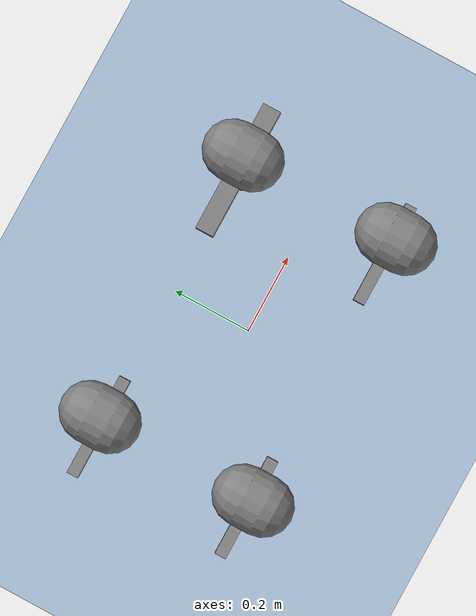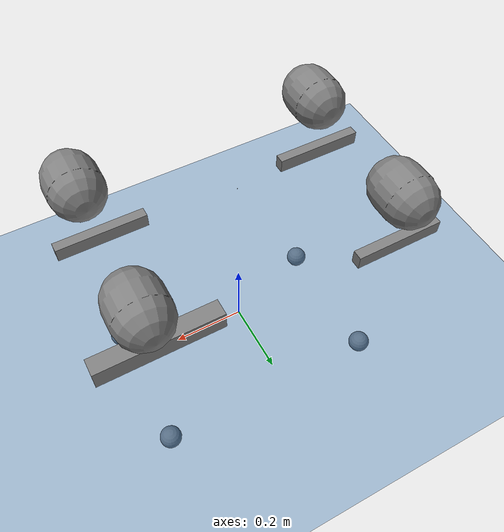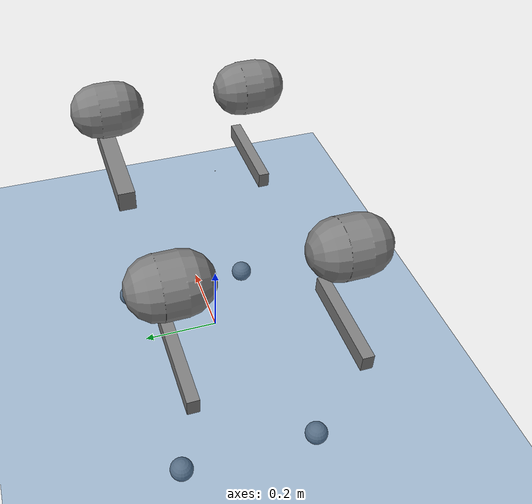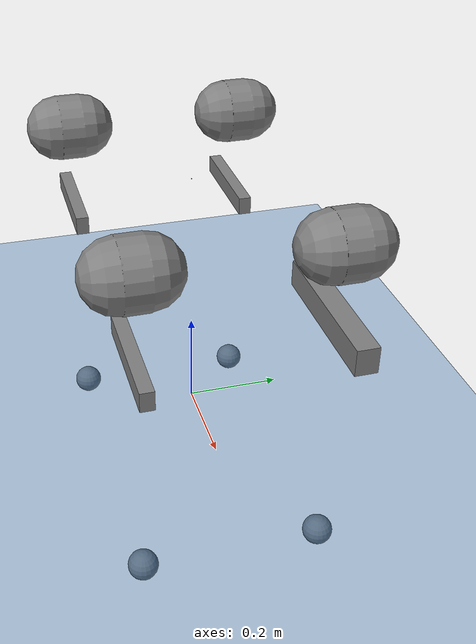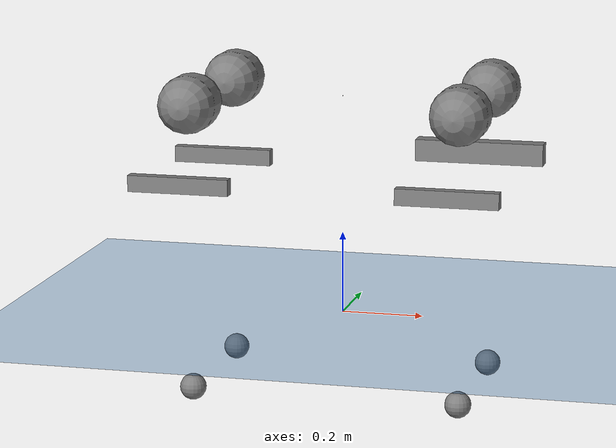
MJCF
<mujoco model="MuJoCo Model">
  <compiler angle="radian"/>

  <option gravity="0 0 -9.81" integrator="implicitfast">
    <flag multiccd="disable"/>
  </option>

  <worldbody>
    <geom name="ground_plane_0" size="5 5 5" type="plane" contype="2" conaffinity="2147483645" friction="2 0.005 0.0001" solref="0.02" rgba="0 0.3 0.6 1"/>
    <body name="body_0" pos="0 0 0.54">
      <inertial pos="0 0 0" quat="-0.00434736 0.708322 -0.0038071 0.705866" mass="41.4371" diaginertia="1.18253 1.06178 0.274649"/>
      <joint name="joint_1" type="free"/>
      <geom name="shape_1_1" size="0.001" contype="4" conaffinity="2147483643" friction="2 0.005 0.0001" solref="0.02"/>
      <body name="body_1" pos="0.3285 0.072 0">
        <inertial pos="0 0 0" quat="0.51159 0.511095 0.488163 0.488625" mass="2.9464" diaginertia="0.00487759 0.0037087 0.00331551"/>
        <joint name="FL_hip" pos="0 0 0" axis="1 0 0" solreflimit="-10000 -100" limited="true" range="-0.87 0.87" actuatorfrclimited="true" actuatorfrcrange="-200 200"/>
        <geom name="shape_2_2" size="0.07 0.025" pos="0 0.12 0" quat="0.707107 -0.707107 0 0" type="capsule" contype="4" conaffinity="2147483643" friction="2 0.005 0.0001" solref="0.02"/>
        <body name="body_2" pos="0 0.11973 0">
          <inertial pos="0 0 0" quat="0.898991 0.0831319 -0.00247095 0.429998" mass="4.8094" diaginertia="0.0629358 0.0622943 0.00666756"/>
          <joint name="FL_thigh" pos="0 0 0" axis="0 1 0" solreflimit="-10000 -100" limited="true" range="-0.94 3.13159" actuatorfrclimited="true" actuatorfrcrange="-200 200"/>
          <geom name="shape_3_3" size="0.16 0.02225 0.027" pos="-0.025 0 -0.16" type="box" contype="4" conaffinity="2147483643" friction="2 0.005 0.0001" solref="0.02"/>
          <body name="FL_foot" pos="0 -8.6984e-05 -0.35">
            <inertial pos="0 0 0" quat="0.706813 -0.0203887 -0.0203887 0.706813" mass="0.53" diaginertia="0.011534 0.0114671 0.000293873"/>
            <joint name="FL_calf" pos="0 0 0" axis="0 1 0" solreflimit="-10000 -100" limited="true" range="-2.82 -0.43" actuatorfrclimited="true" actuatorfrcrange="-320 320"/>
            <geom name="shape_4_4" size="0.032" pos="0 0 -0.35" contype="4" conaffinity="2147483643" friction="2 0.005 0.0001" solref="0.02"/>
          </body>
        </body>
      </body>
      <body name="body_4" pos="0.3285 -0.072 0">
        <inertial pos="0 0 0" quat="0.476259 0.475828 0.519403 0.526294" mass="2.9464" diaginertia="0.00469091 0.0034208 0.00262499"/>
        <joint name="FR_hip" pos="0 0 0" axis="1 0 0" solreflimit="-10000 -100" limited="true" range="-0.87 0.87" actuatorfrclimited="true" actuatorfrcrange="-200 200"/>
        <geom name="shape_5_5" size="0.07 0.025" pos="0 -0.12 0" quat="0.707107 -0.707107 0 0" type="capsule" contype="4" conaffinity="2147483643" friction="2 0.005 0.0001" solref="0.02"/>
        <body name="body_5" pos="0 -0.11973 0">
          <inertial pos="0 0 0" quat="0.430062 -0.0024769 0.083131 0.898961" mass="4.8094" diaginertia="0.062936 0.0622945 0.00666762"/>
          <joint name="FR_thigh" pos="0 0 0" axis="0 1 0" solreflimit="-10000 -100" limited="true" range="-0.94 3.13159" actuatorfrclimited="true" actuatorfrcrange="-200 200"/>
          <geom name="shape_6_6" size="0.125 0.014 0.02" pos="-0.03 0 -0.2" type="box" contype="4" conaffinity="2147483643" friction="2 0.005 0.0001" solref="0.02"/>
          <body name="FR_foot" pos="0 8.6986e-05 -0.35">
            <inertial pos="0 0 0" quat="0.706813 -0.0203887 -0.0203887 0.706813" mass="0.53" diaginertia="0.011534 0.0114671 0.000293873"/>
            <joint name="FR_calf" pos="0 0 0" axis="0 1 0" solreflimit="-10000 -100" limited="true" range="-2.82 -0.43" actuatorfrclimited="true" actuatorfrcrange="-320 320"/>
            <geom name="shape_7_7" size="0.032" pos="0 0 -0.35" contype="4" conaffinity="2147483643" friction="2 0.005 0.0001" solref="0.02"/>
          </body>
        </body>
      </body>
      <body name="body_7" pos="-0.3285 0.072 0">
        <inertial pos="0 0 0" quat="0.475828 0.476259 0.526294 0.519403" mass="2.9464" diaginertia="0.00469091 0.0034208 0.00262499"/>
        <joint name="RL_hip" pos="0 0 0" axis="1 0 0" solreflimit="-10000 -100" limited="true" range="-0.87 0.87" actuatorfrclimited="true" actuatorfrcrange="-200 200"/>
        <geom name="shape_8_8" size="0.07 0.025" pos="0 0.12 0" quat="0.707107 -0.707107 0 0" type="capsule" contype="4" conaffinity="2147483643" friction="2 0.005 0.0001" solref="0.02"/>
        <body name="body_8" pos="0 0.11973 0">
          <inertial pos="0 0 0" quat="0.898961 0.083131 -0.0024769 0.430062" mass="4.8094" diaginertia="0.062936 0.0622945 0.00666762"/>
          <joint name="RL_thigh" pos="0 0 0" axis="0 1 0" solreflimit="-10000 -100" limited="true" range="-0.94 3.13159" actuatorfrclimited="true" actuatorfrcrange="-200 200"/>
          <geom name="shape_9_9" size="0.125 0.014 0.02" pos="-0.03 0 -0.2" type="box" contype="4" conaffinity="2147483643" friction="2 0.005 0.0001" solref="0.02"/>
          <body name="RL_foot" pos="0 -8.6984e-05 -0.35">
            <inertial pos="0 0 0" quat="0.706813 -0.0203887 -0.0203887 0.706813" mass="0.53" diaginertia="0.011534 0.0114671 0.000293873"/>
            <joint name="RL_calf" pos="0 0 0" axis="0 1 0" solreflimit="-10000 -100" limited="true" range="-2.82 -0.43" actuatorfrclimited="true" actuatorfrcrange="-320 320"/>
            <geom name="shape_10_10" size="0.032" pos="0 0 -0.35" contype="4" conaffinity="2147483643" friction="2 0.005 0.0001" solref="0.02"/>
          </body>
        </body>
      </body>
      <body name="body_10" pos="-0.3285 -0.072 0">
        <inertial pos="0 0 0" quat="0.511095 0.51159 0.488625 0.488163" mass="2.9464" diaginertia="0.00487759 0.0037087 0.00331551"/>
        <joint name="RR_hip" pos="0 0 0" axis="1 0 0" solreflimit="-10000 -100" limited="true" range="-0.87 0.87" actuatorfrclimited="true" actuatorfrcrange="-200 200"/>
        <geom name="shape_11_11" size="0.07 0.025" pos="0 -0.12 0" quat="0.707107 -0.707107 0 0" type="capsule" contype="4" conaffinity="2147483643" friction="2 0.005 0.0001" solref="0.02"/>
        <body name="body_11" pos="0 -0.11973 0">
          <inertial pos="0 0 0" quat="0.429998 -0.00247095 0.0831319 0.898991" mass="4.8094" diaginertia="0.0629358 0.0622943 0.00666756"/>
          <joint name="RR_thigh" pos="0 0 0" axis="0 1 0" solreflimit="-10000 -100" limited="true" range="-0.94 3.13159" actuatorfrclimited="true" actuatorfrcrange="-200 200"/>
          <geom name="shape_12_12" size="0.125 0.014 0.02" pos="-0.03 0 -0.2" type="box" contype="4" conaffinity="2147483643" friction="2 0.005 0.0001" solref="0.02"/>
          <body name="RR_foot" pos="0 8.6986e-05 -0.35">
            <inertial pos="0 0 0" quat="0.706813 -0.0203887 -0.0203887 0.706813" mass="0.53" diaginertia="0.011534 0.0114671 0.000293873"/>
            <joint name="RR_calf" pos="0 0 0" axis="0 1 0" solreflimit="-10000 -100" limited="true" range="-2.82 -0.43" actuatorfrclimited="true" actuatorfrcrange="-320 320"/>
            <geom name="shape_13_13" size="0.032" pos="0 0 -0.35" contype="4" conaffinity="2147483643" friction="2 0.005 0.0001" solref="0.02"/>
          </body>
        </body>
      </body>
    </body>
  </worldbody>

  <contact>
    <exclude body1="body_0" body2="body_1"/>
    <exclude body1="body_0" body2="body_2"/>
    <exclude body1="body_0" body2="FL_foot"/>
    <exclude body1="body_0" body2="body_4"/>
    <exclude body1="body_0" body2="body_5"/>
    <exclude body1="body_0" body2="FR_foot"/>
    <exclude body1="body_0" body2="body_7"/>
    <exclude body1="body_0" body2="body_8"/>
    <exclude body1="body_0" body2="RL_foot"/>
    <exclude body1="body_0" body2="body_10"/>
    <exclude body1="body_0" body2="body_11"/>
    <exclude body1="body_0" body2="RR_foot"/>
    <exclude body1="body_1" body2="body_2"/>
    <exclude body1="body_1" body2="FL_foot"/>
    <exclude body1="body_1" body2="body_4"/>
    <exclude body1="body_1" body2="body_5"/>
    <exclude body1="body_1" body2="FR_foot"/>
    <exclude body1="body_1" body2="body_7"/>
    <exclude body1="body_1" body2="body_8"/>
    <exclude body1="body_1" body2="RL_foot"/>
    <exclude body1="body_1" body2="body_10"/>
    <exclude body1="body_1" body2="body_11"/>
    <exclude body1="body_1" body2="RR_foot"/>
    <exclude body1="body_2" body2="FL_foot"/>
    <exclude body1="body_2" body2="body_4"/>
    <exclude body1="body_2" body2="body_5"/>
    <exclude body1="body_2" body2="FR_foot"/>
    <exclude body1="body_2" body2="body_7"/>
    <exclude body1="body_2" body2="body_8"/>
    <exclude body1="body_2" body2="RL_foot"/>
    <exclude body1="body_2" body2="body_10"/>
    <exclude body1="body_2" body2="body_11"/>
    <exclude body1="body_2" body2="RR_foot"/>
    <exclude body1="FL_foot" body2="body_4"/>
    <exclude body1="FL_foot" body2="body_5"/>
    <exclude body1="FL_foot" body2="FR_foot"/>
    <exclude body1="FL_foot" body2="body_7"/>
    <exclude body1="FL_foot" body2="body_8"/>
    <exclude body1="FL_foot" body2="RL_foot"/>
    <exclude body1="FL_foot" body2="body_10"/>
    <exclude body1="FL_foot" body2="body_11"/>
    <exclude body1="FL_foot" body2="RR_foot"/>
    <exclude body1="body_4" body2="body_5"/>
    <exclude body1="body_4" body2="FR_foot"/>
    <exclude body1="body_4" body2="body_7"/>
    <exclude body1="body_4" body2="body_8"/>
    <exclude body1="body_4" body2="RL_foot"/>
    <exclude body1="body_4" body2="body_10"/>
    <exclude body1="body_4" body2="body_11"/>
    <exclude body1="body_4" body2="RR_foot"/>
    <exclude body1="body_5" body2="FR_foot"/>
    <exclude body1="body_5" body2="body_7"/>
    <exclude body1="body_5" body2="body_8"/>
    <exclude body1="body_5" body2="RL_foot"/>
    <exclude body1="body_5" body2="body_10"/>
    <exclude body1="body_5" body2="body_11"/>
    <exclude body1="body_5" body2="RR_foot"/>
    <exclude body1="FR_foot" body2="body_7"/>
    <exclude body1="FR_foot" body2="body_8"/>
    <exclude body1="FR_foot" body2="RL_foot"/>
    <exclude body1="FR_foot" body2="body_10"/>
    <exclude body1="FR_foot" body2="body_11"/>
    <exclude body1="FR_foot" body2="RR_foot"/>
    <exclude body1="body_7" body2="body_8"/>
    <exclude body1="body_7" body2="RL_foot"/>
    <exclude body1="body_7" body2="body_10"/>
    <exclude body1="body_7" body2="body_11"/>
    <exclude body1="body_7" body2="RR_foot"/>
    <exclude body1="body_8" body2="RL_foot"/>
    <exclude body1="body_8" body2="body_10"/>
    <exclude body1="body_8" body2="body_11"/>
    <exclude body1="body_8" body2="RR_foot"/>
    <exclude body1="RL_foot" body2="body_10"/>
    <exclude body1="RL_foot" body2="body_11"/>
    <exclude body1="RL_foot" body2="RR_foot"/>
    <exclude body1="body_10" body2="body_11"/>
    <exclude body1="body_10" body2="RR_foot"/>
    <exclude body1="body_11" body2="RR_foot"/>
  </contact>

  <actuator>
    <general name="FL_hip_pos" joint="FL_hip" biastype="affine" gainprm="1400" biasprm="0 -1400"/>
    <general name="FL_hip_vel" joint="FL_hip" biastype="affine" gainprm="35" biasprm="0 0 -35"/>
    <general name="FL_thigh_pos" joint="FL_thigh" biastype="affine" gainprm="1400" biasprm="0 -1400"/>
    <general name="FL_thigh_vel" joint="FL_thigh" biastype="affine" gainprm="35" biasprm="0 0 -35"/>
    <general name="FL_calf_pos" joint="FL_calf" biastype="affine" gainprm="1400" biasprm="0 -1400"/>
    <general name="FL_calf_vel" joint="FL_calf" biastype="affine" gainprm="35" biasprm="0 0 -35"/>
    <general name="FR_hip_pos" joint="FR_hip" biastype="affine" gainprm="1400" biasprm="0 -1400"/>
    <general name="FR_hip_vel" joint="FR_hip" biastype="affine" gainprm="35" biasprm="0 0 -35"/>
    <general name="FR_thigh_pos" joint="FR_thigh" biastype="affine" gainprm="1400" biasprm="0 -1400"/>
    <general name="FR_thigh_vel" joint="FR_thigh" biastype="affine" gainprm="35" biasprm="0 0 -35"/>
    <general name="FR_calf_pos" joint="FR_calf" biastype="affine" gainprm="1400" biasprm="0 -1400"/>
    <general name="FR_calf_vel" joint="FR_calf" biastype="affine" gainprm="35" biasprm="0 0 -35"/>
    <general name="RL_hip_pos" joint="RL_hip" biastype="affine" gainprm="1400" biasprm="0 -1400"/>
    <general name="RL_hip_vel" joint="RL_hip" biastype="affine" gainprm="35" biasprm="0 0 -35"/>
    <general name="RL_thigh_pos" joint="RL_thigh" biastype="affine" gainprm="1400" biasprm="0 -1400"/>
    <general name="RL_thigh_vel" joint="RL_thigh" biastype="affine" gainprm="35" biasprm="0 0 -35"/>
    <general name="RL_calf_pos" joint="RL_calf" biastype="affine" gainprm="1400" biasprm="0 -1400"/>
    <general name="RL_calf_vel" joint="RL_calf" biastype="affine" gainprm="35" biasprm="0 0 -35"/>
    <general name="RR_hip_pos" joint="RR_hip" biastype="affine" gainprm="1400" biasprm="0 -1400"/>
    <general name="RR_hip_vel" joint="RR_hip" biastype="affine" gainprm="35" biasprm="0 0 -35"/>
    <general name="RR_thigh_pos" joint="RR_thigh" biastype="affine" gainprm="1400" biasprm="0 -1400"/>
    <general name="RR_thigh_vel" joint="RR_thigh" biastype="affine" gainprm="35" biasprm="0 0 -35"/>
    <general name="RR_calf_pos" joint="RR_calf" biastype="affine" gainprm="1400" biasprm="0 -1400"/>
    <general name="RR_calf_vel" joint="RR_calf" biastype="affine" gainprm="35" biasprm="0 0 -35"/>
  </actuator>
</mujoco>
